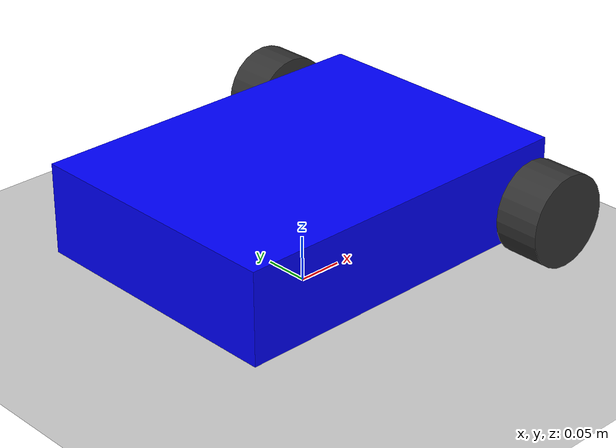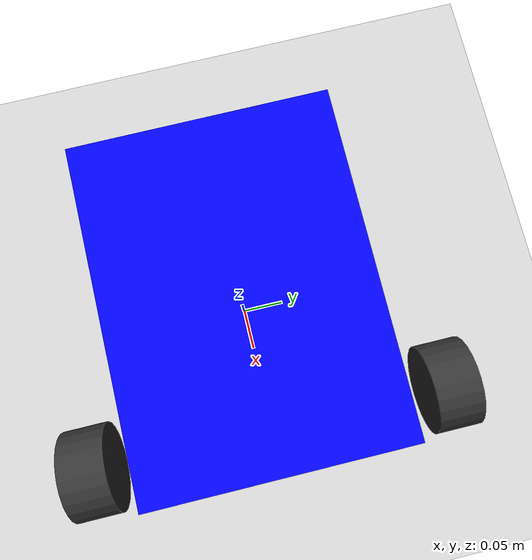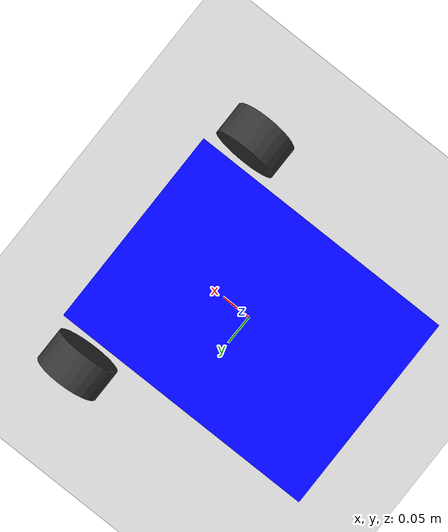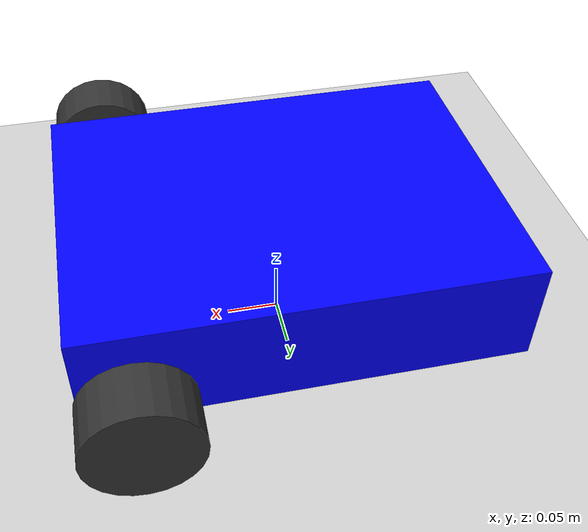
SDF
<?xml version="1.0"?>
<sdf version="1.6">
  <world name="simple_robot_world">
    <gravity>0 0 -9.81</gravity>

    <!-- Simple mobile robot -->
    <model name="simple_robot">
      <pose>0 0 0.1 0 0 0</pose>
      <static>false</static>

      <!-- Base link -->
      <link name="base_link">
        <inertial>
          <mass>5.0</mass>
          <inertia>
            <ixx>0.1</ixx>
            <iyy>0.1</iyy>
            <izz>0.1</izz>
            <ixy>0.0</ixy>
            <ixz>0.0</ixz>
            <iyz>0.0</iyz>
          </inertia>
        </inertial>
        <collision name="collision">
          <geometry>
            <box>
              <size>0.4 0.3 0.1</size>
            </box>
          </geometry>
        </collision>
        <visual name="visual">
          <geometry>
            <box>
              <size>0.4 0.3 0.1</size>
            </box>
          </geometry>
          <material>
            <ambient>0.0 0.0 1.0 1.0</ambient>
            <diffuse>0.0 0.0 1.0 1.0</diffuse>
            <specular>0.5 0.5 0.5 1.0</specular>
          </material>
        </visual>
      </link>

      <!-- Left wheel -->
      <link name="left_wheel">
        <pose>0.15 0.2 0.0 1.5707 0 0</pose>
        <inertial>
          <mass>0.5</mass>
        </inertial>
        <collision name="collision">
          <geometry>
            <cylinder>
              <radius>0.05</radius>
              <length>0.05</length>
            </cylinder>
          </geometry>
        </collision>
        <visual name="visual">
          <geometry>
            <cylinder>
              <radius>0.05</radius>
              <length>0.05</length>
            </cylinder>
          </geometry>
          <material>
            <ambient>0.2 0.2 0.2 1.0</ambient>
            <diffuse>0.2 0.2 0.2 1.0</diffuse>
          </material>
        </visual>
      </link>

      <!-- Right wheel -->
      <link name="right_wheel">
        <pose>0.15 -0.2 0.0 1.5707 0 0</pose>
        <inertial>
          <mass>0.5</mass>
        </inertial>
        <collision name="collision">
          <geometry>
            <cylinder>
              <radius>0.05</radius>
              <length>0.05</length>
            </cylinder>
          </geometry>
        </collision>
        <visual name="visual">
          <geometry>
            <cylinder>
              <radius>0.05</radius>
              <length>0.05</length>
            </cylinder>
          </geometry>
          <material>
            <ambient>0.2 0.2 0.2 1.0</ambient>
            <diffuse>0.2 0.2 0.2 1.0</diffuse>
          </material>
        </visual>
      </link>

      <!-- Left wheel joint -->
      <joint name="left_wheel_joint" type="revolute">
        <parent>base_link</parent>
        <child>left_wheel</child>
        <axis>
          <xyz>0 1 0</xyz>
          <limit>
            <lower>-1000000</lower>
            <upper>1000000</upper>
            <effort>10</effort>
            <velocity>100</velocity>
          </limit>
        </axis>
      </joint>

      <!-- Right wheel joint -->
      <joint name="right_wheel_joint" type="revolute">
        <parent>base_link</parent>
        <child>right_wheel</child>
        <axis>
          <xyz>0 1 0</xyz>
          <limit>
            <lower>-1000000</lower>
            <upper>1000000</upper>
            <effort>10</effort>
            <velocity>100</velocity>
          </limit>
        </axis>
      </joint>

      <!-- Caster wheel -->
      <link name="caster">
        <pose>-0.15 0 -0.025 0 0 0</pose>
        <inertial>
          <mass>0.1</mass>
        </inertial>
        <collision name="collision">
          <geometry>
            <sphere>
              <radius>0.025</radius>
            </sphere>
          </geometry>
        </collision>
        <visual name="visual">
          <geometry>
            <sphere>
              <radius>0.025</radius>
            </sphere>
          </geometry>
          <material>
            <ambient>0.5 0.5 0.5 1.0</ambient>
            <diffuse>0.5 0.5 0.5 1.0</diffuse>
          </material>
        </visual>
      </link>

      <!-- Caster joint -->
      <joint name="caster_joint" type="fixed">
        <parent>base_link</parent>
        <child>caster</child>
      </joint>
    </model>

    <!-- Ground plane -->
    <model name="ground_plane">
      <static>true</static>
      <link name="link">
        <collision name="collision">
          <geometry>
            <plane>
              <normal>0 0 1</normal>
              <size>100 100</size>
            </plane>
          </geometry>
        </collision>
        <visual name="visual">
          <geometry>
            <plane>
              <normal>0 0 1</normal>
              <size>100 100</size>
            </plane>
          </geometry>
        </visual>
      </link>
    </model>

    <!-- Point light -->
    <light name="point_light" type="point">
      <pose>5 5 5 0 0 0</pose>
      <diffuse>0.8 0.8 0.8 1.0</diffuse>
      <specular>0.2 0.2 0.2 1.0</specular>
      <attenuation>
        <range>20</range>
        <constant>0.5</constant>
        <linear>0.01</linear>
        <quadratic>0.001</quadratic>
      </attenuation>
    </light>
  </world>
</sdf>
